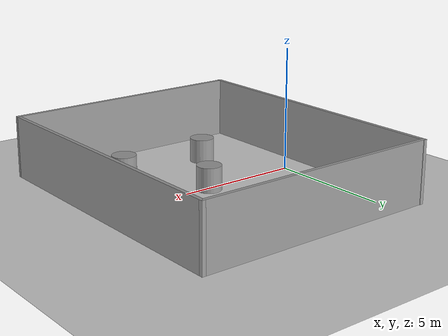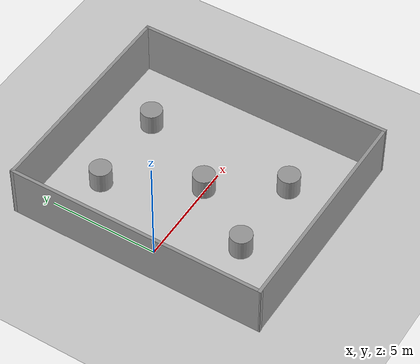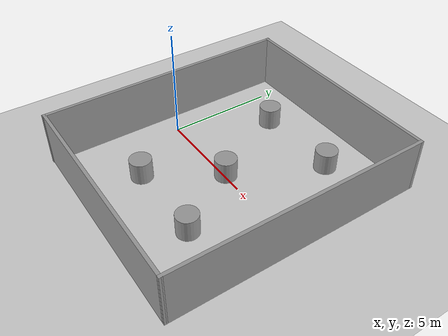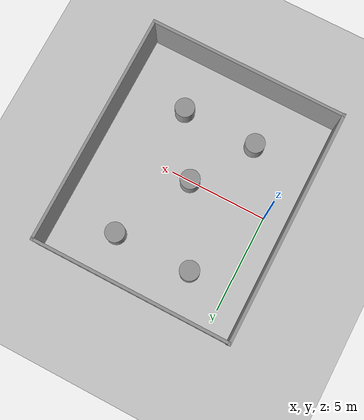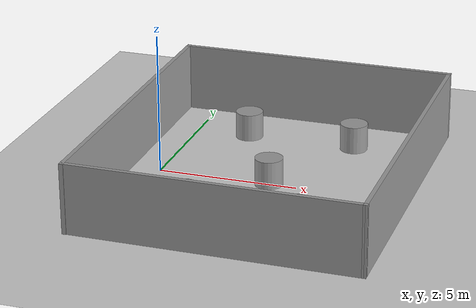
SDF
<sdf version="1.6">
 <world name="default">
  <scene><ambient>0.4 0.4 0.4 1</ambient><background>0.7 0.7 0.7 1</background><shadows>1</shadows></scene>
  <light name="sun" type="directional">
   <pose>0 0 10 0 -0 0</pose>
   <diffuse>0.8 0.8 0.8 1</diffuse>
   <specular>0.2 0.2 0.2 1</specular>
   <attenuation>
    <range>1000</range>
    <constant>0.9</constant>
    <linear>0.01</linear>
    <quadratic>0.001</quadratic>
   </attenuation>
   <direction>-0.5 0.1 -0.9</direction>
  </light>
  <model name="ground_plane">
   <static>1</static>
   <link name="link">
    <collision name="collision">
     <geometry><plane><normal>0 0 1</normal><size>100 100</size></plane></geometry>
     <surface>
      <contact><collide_bitmask>65535</collide_bitmask></contact>
      <friction><ode><mu>100</mu><mu2>50</mu2></ode></friction>
     </surface>
    </collision>
    <visual name="visual">
     <cast_shadows>0</cast_shadows>
     <geometry><plane><normal>0 0 1</normal><size>100 100</size></plane></geometry>
     <material>
      <script><uri>file://media/materials/scripts/gazebo.material</uri><name>Gazebo/Grey</name></script>
     </material>
    </visual>
   </link>
  </model>
  <physics name="default_physics" default="0" type="ode">
   <real_time_update_rate>1000</real_time_update_rate>
   <max_step_size>0.001</max_step_size>
   <real_time_factor>1</real_time_factor>
   <ode>
    <solver>
     <type>quick</type>
     <iters>150</iters>
     <precon_iters>0</precon_iters>
     <sor>1.4</sor>
     <use_dynamic_moi_rescaling>1</use_dynamic_moi_rescaling>
    </solver>
    <constraints>
     <cfm>1e-05</cfm>
     <erp>0.2</erp>
     <contact_max_correcting_vel>2000</contact_max_correcting_vel>
     <contact_surface_layer>0.01</contact_surface_layer>
    </constraints>
   </ode>
  </physics>
  <gravity>0 0 -9.8</gravity>
  <magnetic_field>6e-06 2.3e-05 -4.2e-05</magnetic_field>
  <atmosphere type="adiabatic"/>
  <spherical_coordinates>
   <surface_model>EARTH_WGS84</surface_model>
   <latitude_deg>0</latitude_deg>
   <longitude_deg>0</longitude_deg>
   <elevation>0</elevation>
   <heading_deg>0</heading_deg>
  </spherical_coordinates>
  <model name="Untitled">
   <pose>3.91065 0.20256 0 0 -0 0</pose>
   <link name="Wall_10">
    <collision name="Wall_10_Collision">
     <geometry><box><size>10.25 0.15 2.5</size></box></geometry>
     <pose>0 0 1.25 0 -0 0</pose>
    </collision>
    <visual name="Wall_10_Visual">
     <pose>0 0 1.25 0 -0 0</pose>
     <geometry><box><size>10.25 0.15 2.5</size></box></geometry>
     <material>
      <script><uri>file://media/materials/scripts/gazebo.material</uri><name>Gazebo/Grey</name></script>
      <ambient>1 1 1 1</ambient>
     </material>
     <meta><layer>0</layer></meta>
    </visual>
    <pose>0 5.9136 0 0 -0 3.14159</pose>
   </link>
   <link name="Wall_6">
    <collision name="Wall_6_Collision">
     <geometry><box><size>12 0.15 2.5</size></box></geometry>
     <pose>0 0 1.25 0 -0 0</pose>
    </collision>
    <visual name="Wall_6_Visual">
     <pose>0 0 1.25 0 -0 0</pose>
     <geometry><box><size>12 0.15 2.5</size></box></geometry>
     <material>
      <script><uri>file://media/materials/scripts/gazebo.material</uri><name>Gazebo/Grey</name></script>
      <ambient>1 1 1 1</ambient>
     </material>
     <meta><layer>0</layer></meta>
    </visual>
    <pose>-5.05 0.011736 0 0 -0 -1.5708</pose>
   </link>
   <link name="Wall_8">
    <collision name="Wall_8_Collision">
     <geometry><box><size>10.25 0.15 2.5</size></box></geometry>
     <pose>0 0 1.25 0 -0 0</pose>
    </collision>
    <visual name="Wall_8_Visual">
     <pose>0 0 1.25 0 -0 0</pose>
     <geometry><box><size>10.25 0.15 2.5</size></box></geometry>
     <material>
      <script><uri>file://media/materials/scripts/gazebo.material</uri><name>Gazebo/Grey</name></script>
      <ambient>1 1 1 1</ambient>
     </material>
     <meta><layer>0</layer></meta>
    </visual>
    <pose>0 -5.91326 0 0 -0 -0.00458</pose>
   </link>
   <link name="Wall_9">
    <collision name="Wall_9_Collision">
     <geometry><box><size>12 0.15 2.5</size></box></geometry>
     <pose>0 0 1.25 0 -0 0</pose>
    </collision>
    <visual name="Wall_9_Visual">
     <pose>0 0 1.25 0 -0 0</pose>
     <geometry><box><size>12 0.15 2.5</size></box></geometry>
     <material>
      <script><uri>file://media/materials/scripts/gazebo.material</uri><name>Gazebo/Grey</name></script>
      <ambient>1 1 1 1</ambient>
     </material>
     <meta><layer>0</layer></meta>
    </visual>
    <pose>5.05 -0.011394 0 0 -0 1.5708</pose>
   </link>
   <static>1</static>
  </model>
  <model name="unit_cylinder">
   <pose>1.99739 3.97976 0.499997 -4e-06 -4e-06 -0.008652</pose>
   <link name="link">
    <inertial>
     <mass>1</mass>
     <inertia><ixx>0.145833</ixx><ixy>0</ixy><ixz>0</ixz><iyy>0.145833</iyy><iyz>0</iyz><izz>0.125</izz></inertia>
    </inertial>
    <collision name="collision">
     <geometry><cylinder><radius>0.5</radius><length>1</length></cylinder></geometry>
    </collision>
    <visual name="visual">
     <geometry><cylinder><radius>0.5</radius><length>1</length></cylinder></geometry>
     <material>
      <script><name>Gazebo/Grey</name><uri>file://media/materials/scripts/gazebo.material</uri></script>
     </material>
    </visual>
   </link>
  </model>
  <model name="unit_cylinder_0">
   <pose>5.98177 4.00522 0.499993 4e-06 4e-06 -0</pose>
   <link name="link">
    <inertial>
     <mass>1</mass>
     <inertia><ixx>0.145833</ixx><ixy>0</ixy><ixz>0</ixz><iyy>0.145833</iyy><iyz>0</iyz><izz>0.125</izz></inertia>
    </inertial>
    <collision name="collision">
     <geometry><cylinder><radius>0.5</radius><length>1</length></cylinder></geometry>
    </collision>
    <visual name="visual">
     <geometry><cylinder><radius>0.5</radius><length>1</length></cylinder></geometry>
     <material>
      <script><name>Gazebo/Grey</name><uri>file://media/materials/scripts/gazebo.material</uri></script>
     </material>
    </visual>
   </link>
  </model>
  <model name="unit_cylinder_1">
   <pose>2.01256 -2.96036 0.499993 -4e-06 -4e-06 -0</pose>
   <link name="link">
    <inertial>
     <mass>1</mass>
     <inertia><ixx>0.145833</ixx><ixy>0</ixy><ixz>0</ixz><iyy>0.145833</iyy><iyz>0</iyz><izz>0.125</izz></inertia>
    </inertial>
    <collision name="collision">
     <geometry><cylinder><radius>0.5</radius><length>1</length></cylinder></geometry>
    </collision>
    <visual name="visual">
     <geometry><cylinder><radius>0.5</radius><length>1</length></cylinder></geometry>
     <material>
      <script><name>Gazebo/Grey</name><uri>file://media/materials/scripts/gazebo.material</uri></script>
     </material>
    </visual>
   </link>
  </model>
  <model name="unit_cylinder_2">
   <pose>5.88171 -2.97675 0.499997 -4e-06 -4e-06 -0</pose>
   <link name="link">
    <inertial>
     <mass>1</mass>
     <inertia><ixx>0.145833</ixx><ixy>0</ixy><ixz>0</ixz><iyy>0.145833</iyy><iyz>0</iyz><izz>0.125</izz></inertia>
    </inertial>
    <collision name="collision">
     <geometry><cylinder><radius>0.5</radius><length>1</length></cylinder></geometry>
    </collision>
    <visual name="visual">
     <geometry><cylinder><radius>0.5</radius><length>1</length></cylinder></geometry>
     <material>
      <script><name>Gazebo/Grey</name><uri>file://media/materials/scripts/gazebo.material</uri></script>
     </material>
    </visual>
   </link>
  </model>
  <model name="unit_cylinder_3">
   <pose>3.99861 0.076919 0.499997 -4e-06 -4e-06 -0</pose>
   <link name="link">
    <inertial>
     <mass>1</mass>
     <inertia><ixx>0.145833</ixx><ixy>0</ixy><ixz>0</ixz><iyy>0.145833</iyy><iyz>0</iyz><izz>0.125</izz></inertia>
    </inertial>
    <collision name="collision">
     <geometry><cylinder><radius>0.5</radius><length>1</length></cylinder></geometry>
    </collision>
    <visual name="visual">
     <geometry><cylinder><radius>0.5</radius><length>1</length></cylinder></geometry>
     <material>
      <script><name>Gazebo/Grey</name><uri>file://media/materials/scripts/gazebo.material</uri></script>
     </material>
    </visual>
   </link>
  </model>
 </world>
</sdf>
